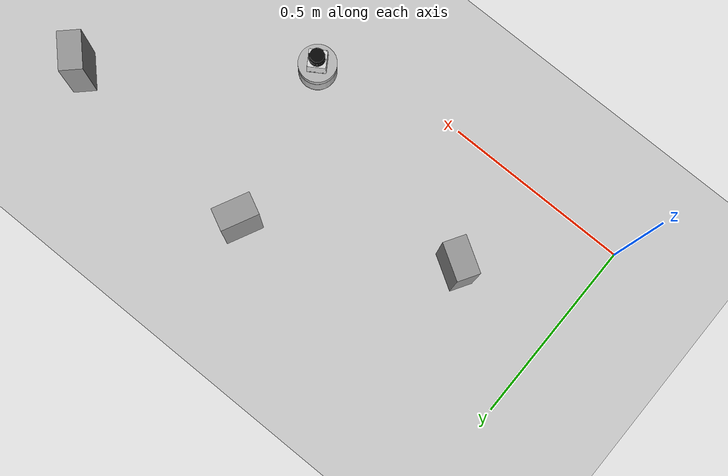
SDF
<sdf version="1.5">
 <world name="default">
  <light name="sun" type="directional">
   <pose>0 0 10 0 -0 0</pose>
   <diffuse>0.8 0.8 0.8 1</diffuse>
   <specular>0.2 0.2 0.2 1</specular>
   <attenuation>
    <range>1000</range>
    <constant>0.9</constant>
    <linear>0.01</linear>
    <quadratic>0.001</quadratic>
   </attenuation>
   <direction>-0.5 0.1 -0.9</direction>
  </light>
  <model name="ground_plane">
   <static>1</static>
   <link name="link">
    <collision name="collision">
     <geometry><plane><normal>0 0 1</normal><size>100 100</size></plane></geometry>
     <surface><friction><ode><mu>100</mu><mu2>50</mu2></ode></friction></surface>
    </collision>
    <visual name="visual">
     <cast_shadows>0</cast_shadows>
     <geometry><plane><normal>0 0 1</normal><size>100 100</size></plane></geometry>
     <material>
      <script><uri>file://media/materials/scripts/gazebo.material</uri><name>Gazebo/Grey</name></script>
     </material>
    </visual>
   </link>
  </model>
  <physics name="default_physics" default="0" type="ode">
   <max_step_size>0.001</max_step_size>
   <real_time_factor>1</real_time_factor>
   <real_time_update_rate>1000</real_time_update_rate>
   <gravity>0 0 -9.8</gravity>
   <magnetic_field>5.5645e-06 2.28758e-05 -4.23884e-05</magnetic_field>
  </physics>
  <scene><ambient>0.4 0.4 0.4 1</ambient><background>0.7 0.7 0.7 1</background><shadows>1</shadows></scene>
  <spherical_coordinates>
   <surface_model>EARTH_WGS84</surface_model>
   <latitude_deg>0</latitude_deg>
   <longitude_deg>0</longitude_deg>
   <elevation>0</elevation>
   <heading_deg>0</heading_deg>
  </spherical_coordinates>
  <model name="unit_box_6">
   <pose>0.774803 0.536784 0.10009 0.003003 1e-06 1.11112</pose>
   <link name="link">
    <inertial>
     <mass>1</mass>
     <inertia><ixx>1</ixx><ixy>0</ixy><ixz>0</ixz><iyy>1</iyy><iyz>0</iyz><izz>1</izz></inertia>
    </inertial>
    <collision name="collision"><geometry><box><size>0.1 0.06 0.2</size></box></geometry></collision>
    <visual name="visual">
     <geometry><box><size>0.1 0.06 0.2</size></box></geometry>
     <material>
      <script><uri>file://media/materials/scripts/gazebo.material</uri><name>Gazebo/Grey</name></script>
     </material>
    </visual>
   </link>
  </model>
  <model name="unit_box_6_clone">
   <pose>1.34057 0.486998 0.100069 0.001227 0.000642 -0.804335</pose>
   <link name="link">
    <inertial>
     <mass>1</mass>
     <inertia><ixx>1</ixx><ixy>0</ixy><ixz>0</ixz><iyy>1</iyy><iyz>0</iyz><izz>1</izz></inertia>
    </inertial>
    <collision name="collision"><geometry><box><size>0.1 0.06 0.2</size></box></geometry></collision>
    <visual name="visual">
     <geometry><box><size>0.1 0.06 0.2</size></box></geometry>
     <material>
      <script><uri>file://media/materials/scripts/gazebo.material</uri><name>Gazebo/Grey</name></script>
     </material>
    </visual>
   </link>
  </model>
  <model name="unit_box_6_clone_0">
   <pose>0.289412 0.282527 0.100077 0.000617 -0.001366 -0.544569</pose>
   <link name="link">
    <inertial>
     <mass>1</mass>
     <inertia><ixx>1</ixx><ixy>0</ixy><ixz>0</ixz><iyy>1</iyy><iyz>0</iyz><izz>1</izz></inertia>
    </inertial>
    <collision name="collision"><geometry><box><size>0.1 0.06 0.2</size></box></geometry></collision>
    <visual name="visual">
     <geometry><box><size>0.1 0.06 0.2</size></box></geometry>
     <material>
      <script><uri>file://media/materials/scripts/gazebo.material</uri><name>Gazebo/Grey</name></script>
     </material>
    </visual>
   </link>
  </model>
  <model name="AMiRo Hokuyo">
   <static>0</static>
   <static>0</static>
   <link name="AMiRo::chassis">
    <inertial>
     <mass>0.4</mass>
     <inertia><ixx>0.0012</ixx><ixy>0</ixy><ixz>0</ixz><iyy>0.0012</iyy><iyz>0</iyz><izz>0.005</izz></inertia>
    </inertial>
    <velocity_decay><linear>0</linear><angular>0</angular></velocity_decay>
    <collision name="collision_DiWheelDrive">
     <pose>0 0 0.011 0 -0 0</pose>
     <geometry><cylinder><radius>0.05</radius><length>0.002</length></cylinder></geometry>
    </collision>
    <visual name="visual_DiWheelDrive">
     <pose>0 0 0.011 0 -0 0</pose>
     <geometry><cylinder><radius>0.05</radius><length>0.002</length></cylinder></geometry>
    </visual>
    <collision name="collision_SensorRing">
     <pose>0 0 0.037 0 -0 0</pose>
     <geometry><cylinder><radius>0.05</radius><length>0.051</length></cylinder></geometry>
    </collision>
    <visual name="visual_SensorRing">
     <pose>0 0 0.037 0 -0 0</pose>
     <geometry><cylinder><radius>0.05</radius><length>0.051</length></cylinder></geometry>
    </visual>
    <collision name="collision_Hat">
     <pose>0 0 0.073 0 -0 0</pose>
     <geometry><cylinder><radius>0.05</radius><length>0.02</length></cylinder></geometry>
    </collision>
    <visual name="visual_Hat">
     <pose>0 0 0.073 0 -0 0</pose>
     <geometry><cylinder><radius>0.05</radius><length>0.02</length></cylinder></geometry>
    </visual>
    <collision name="collision_sph_caster_front">
     <pose>0.042 0 0.0025 0 -0 0</pose>
     <geometry><sphere><radius>0.002</radius></sphere></geometry>
     <surface>
      <friction>
       <ode><mu>0.01</mu><mu2>0.01</mu2><fdir1>0 0 0</fdir1><slip1>0</slip1><slip2>0</slip2></ode>
      </friction>
      <bounce><restitution_coefficient>0</restitution_coefficient><threshold>100000</threshold></bounce>
      <contact>
       <ode>
        <soft_cfm>0</soft_cfm>
        <soft_erp>0.2</soft_erp>
        <kp>1e+12</kp>
        <kd>1</kd>
        <max_vel>100</max_vel>
        <min_depth>0.001</min_depth>
       </ode>
      </contact>
     </surface>
    </collision>
    <visual name="visual_sph_caster_front">
     <pose>0.042 0 0.0025 0 -0 0</pose>
     <geometry><sphere><radius>0.002</radius></sphere></geometry>
    </visual>
    <collision name="collision_cyl_caster_front">
     <pose>0.042 0 0.0065 0 -0 0</pose>
     <geometry><cylinder><radius>0.003</radius><length>0.007</length></cylinder></geometry>
     <surface>
      <friction>
       <ode><mu>0</mu><mu2>0</mu2></ode>
       <bullet><friction>0</friction><friction2>0</friction2></bullet>
      </friction>
      <contact><collide_without_contact>0</collide_without_contact></contact>
     </surface>
    </collision>
    <visual name="visual_cyl_caster_front">
     <pose>0.042 0 0.0065 0 -0 0</pose>
     <geometry><cylinder><radius>0.003</radius><length>0.007</length></cylinder></geometry>
    </visual>
    <collision name="collision_sph_caster_back">
     <pose>-0.042 0 0.0025 0 -0 0</pose>
     <geometry><sphere><radius>0.002</radius></sphere></geometry>
     <surface>
      <friction>
       <ode><mu>0.01</mu><mu2>0.01</mu2><fdir1>0 0 0</fdir1><slip1>0</slip1><slip2>0</slip2></ode>
      </friction>
      <bounce><restitution_coefficient>0</restitution_coefficient><threshold>100000</threshold></bounce>
      <contact>
       <ode>
        <soft_cfm>0</soft_cfm>
        <soft_erp>0.2</soft_erp>
        <kp>1e+12</kp>
        <kd>1</kd>
        <max_vel>100</max_vel>
        <min_depth>0.001</min_depth>
       </ode>
      </contact>
     </surface>
    </collision>
    <visual name="visual_sph_caster_back">
     <pose>-0.042 0 0.0025 0 -0 0</pose>
     <geometry><sphere><radius>0.002</radius></sphere></geometry>
    </visual>
    <collision name="collision_cyl_caster_back">
     <pose>-0.042 0 0.0065 0 -0 0</pose>
     <geometry><cylinder><radius>0.003</radius><length>0.007</length></cylinder></geometry>
    </collision>
    <visual name="visual_cyl_caster_back">
     <pose>-0.042 0 0.0065 0 -0 0</pose>
     <geometry><cylinder><radius>0.003</radius><length>0.007</length></cylinder></geometry>
    </visual>
   </link>
   <link name="AMiRo::left_wheel">
    <pose>0 0.035 0.03 -5.76279e-13 1.5707 1.5707</pose>
    <inertial>
     <mass>0.02</mass>
     <inertia>
      <ixx>6.8453e-06</ixx>
      <ixy>0</ixy>
      <ixz>0</ixz>
      <iyy>6.8453e-06</iyy>
      <iyz>0</iyz>
      <izz>7.5625e-06</izz>
     </inertia>
    </inertial>
    <collision name="collision">
     <geometry><cylinder><radius>0.03</radius><length>0.006</length></cylinder></geometry>
    </collision>
    <visual name="visual">
     <geometry><cylinder><radius>0.03</radius><length>0.006</length></cylinder></geometry>
    </visual>
   </link>
   <link name="AMiRo::right_wheel">
    <pose>0 -0.035 0.03 -5.76279e-13 1.5707 1.5707</pose>
    <inertial>
     <mass>0.02</mass>
     <inertia>
      <ixx>6.8453e-06</ixx>
      <ixy>0</ixy>
      <ixz>0</ixz>
      <iyy>6.8453e-06</iyy>
      <iyz>0</iyz>
      <izz>7.5625e-06</izz>
     </inertia>
    </inertial>
    <collision name="collision">
     <geometry><cylinder><radius>0.03</radius><length>0.006</length></cylinder></geometry>
    </collision>
    <visual name="visual">
     <geometry><cylinder><radius>0.03</radius><length>0.006</length></cylinder></geometry>
    </visual>
   </link>
   <joint name="AMiRo::left_wheel_hinge" type="revolute">
    <child>AMiRo::left_wheel</child>
    <parent>AMiRo::chassis</parent>
    <axis>
     <xyz>0 1 0</xyz>
     <use_parent_model_frame>1</use_parent_model_frame>
     <limit><lower>-1e+16</lower><upper>1e+16</upper></limit>
     <dynamics><spring_reference>0</spring_reference><spring_stiffness>0</spring_stiffness></dynamics>
    </axis>
   </joint>
   <joint name="AMiRo::right_wheel_hinge" type="revolute">
    <child>AMiRo::right_wheel</child>
    <parent>AMiRo::chassis</parent>
    <axis>
     <xyz>0 1 0</xyz>
     <use_parent_model_frame>1</use_parent_model_frame>
     <limit><lower>-1e+16</lower><upper>1e+16</upper></limit>
     <dynamics><spring_reference>0</spring_reference><spring_stiffness>0</spring_stiffness></dynamics>
    </axis>
   </joint>
   <plugin name="model_push" filename="libgazebo_rsb_wheel.so">
    <differentialKinematicSubscope>diffKin</differentialKinematicSubscope>
    <baseWidth>0.06</baseWidth>
    <wheelRadius>0.03</wheelRadius>
    <rightWheelMaxForceN>2.4</rightWheelMaxForceN>
    <leftWheelMaxForceN>2.4</leftWheelMaxForceN>
   </plugin>
   <link name="AMiRo::gps">
    <sensor name="positioning" type="AMiRo::gps">
     <always_on>1</always_on>
     <update_rate>10</update_rate>
     <visualize>1</visualize>
    </sensor>
    <inertial>
     <inertia><ixx>1</ixx><ixy>0</ixy><ixz>0</ixz><iyy>1</iyy><iyz>0</iyz><izz>1</izz></inertia>
     <mass>1</mass>
    </inertial>
   </link>
   <plugin name="positioning" filename="libgazebo_rsb_gps.so">
    <alwaysOn>true</alwaysOn>
    <updateRate>10.0</updateRate>
    <gpsSubscope>AMiRo::gps</gpsSubscope>
   </plugin>
   <plugin name="odometry" filename="libgazebo_rsb_odom_amiro.so">
    <alwaysOn>true</alwaysOn>
    <updateRate>10.0</updateRate>
    <odomSubscope>odom</odomSubscope>
    <baseWidth>0.055</baseWidth>
    <kl>0.01</kl>
    <kr>0.01</kr>
   </plugin>
   <link name="hokuyo::link">
    <inertial>
     <mass>0.1</mass>
     <inertia>
      <ixx>4.56e-05</ixx>
      <ixy>0</ixy>
      <ixz>0</ixz>
      <iyy>4.56e-05</iyy>
      <iyz>0</iyz>
      <izz>3.12e-05</izz>
     </inertia>
    </inertial>
    <visual name="visual"><geometry><mesh><uri>model://hokuyo/meshes/hokuyo.dae</uri></mesh></geometry></visual>
    <collision name="collision-base">
     <pose>0 0 -0.0145 0 -0 0</pose>
     <geometry><box><size>0.05 0.05 0.041</size></box></geometry>
    </collision>
    <collision name="collision-top">
     <pose>0 0 0.0205 0 -0 0</pose>
     <geometry><cylinder><radius>0.021</radius><length>0.029</length></cylinder></geometry>
    </collision>
    <sensor name="laser" type="ray">
     <pose>0.01 0 0.0175 0 -0 0</pose>
     <ray>
      <scan>
       <horizontal>
        <samples>91</samples>
        <resolution>1</resolution>
        <min_angle>-1.5</min_angle>
        <max_angle>1.5</max_angle>
       </horizontal>
      </scan>
      <range><min>0.08</min><max>5</max><resolution>0.01</resolution></range>
     </ray>
     <plugin name="laser" filename="libgazebo_rsb_laser.so"><lidarSubscope>lidar</lidarSubscope></plugin>
     <always_on>1</always_on>
     <update_rate>10</update_rate>
     <visualize>1</visualize>
    </sensor>
    <pose>0 0 0.118 0 -0 0</pose>
   </link>
   <joint name="hokuyo_joint" type="revolute">
    <child>hokuyo::link</child>
    <parent>AMiRo::chassis</parent>
    <axis>
     <xyz>0 0 1</xyz>
     <limit><upper>0</upper><lower>0</lower></limit>
     <use_parent_model_frame>1</use_parent_model_frame>
     <dynamics><spring_reference>0</spring_reference><spring_stiffness>0</spring_stiffness></dynamics>
    </axis>
   </joint>
   <pose>0.877106 0.105616 0 -1.5e-05 -0.002033 -2.57291</pose>
  </model>
 </world>
</sdf>
